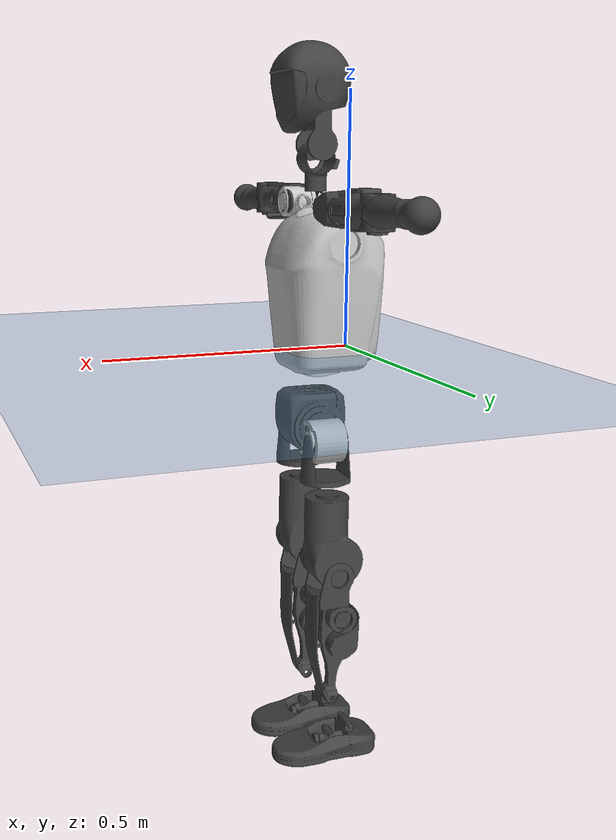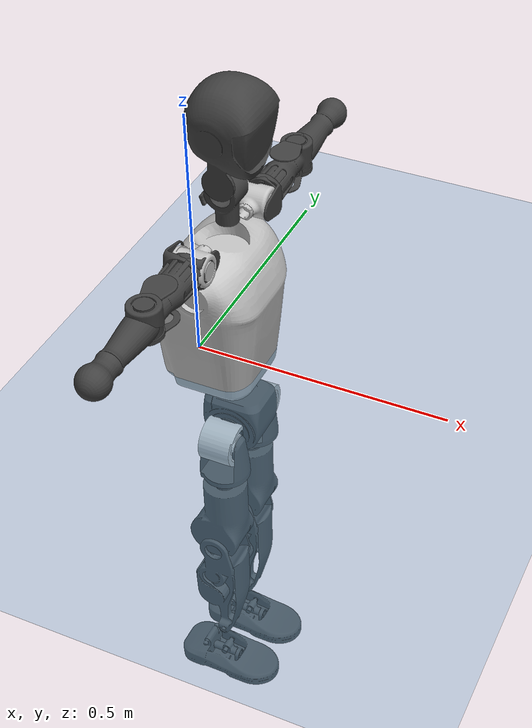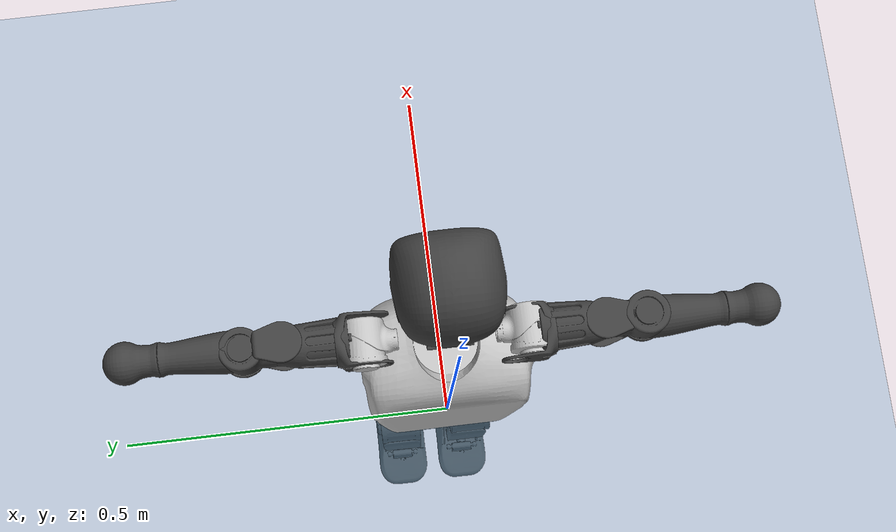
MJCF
<mujoco model="T1">
  <compiler angle="radian" assetdir="assets" balanceinertia="true" inertiafromgeom="false"/>

  <option timestep="0.005" density="1.2" viscosity="2e-05"/>

  <size nkey="1"/>

  <visual>
    <quality shadowsize="8192"/>
    <map shadowclip="0.5"/>
  </visual>

  <default>
    <default class="/">
      <joint armature="0.01" damping="0.01" frictionloss="0.1"/>
      <geom contype="0" conaffinity="0" group="1" solref="-1000 -80"/>
      <site size="0.01 0.005 0.005" group="5"/>
      <general forcelimited="true" biastype="affine" gainprm="25" biasprm="0 -25 -0.6"/>
      <default class="t1">
        <geom rgba="0.25 0.25 0.25 1"/>
        <default class="visual">
          <geom type="mesh" group="2"/>
        </default>
        <default class="collision">
          <geom group="3"/>
        </default>
        <default class="foot">
          <geom size="0.1115 0.05 0.015" type="box" condim="6" group="4" priority="1" solimp="0.015 1 0.015"/>
        </default>
        <default class="reward_collision_sphere">
          <geom group="5" rgba="1 0 0 1"/>
        </default>
      </default>
    </default>
  </default>

  <asset>
    <texture type="skybox" colorspace="auto" name="//unnamed_texture_0" builtin="gradient" rgb1="0.95 0.95 0.95" rgb2="0.95 0.95 0.95" width="100" height="600"/>
    <texture type="2d" colorspace="auto" name="texplane" builtin="checker" rgb1="0.345 0.575 0.748" rgb2="0.345 0.575 0.748" markrgb="1 1 1" width="512" height="512"/>
    <material name="MatPlane" class="/" texture="texplane" texuniform="true" texrepeat="2 2" specular="0.9"/>
    <mesh name="Trunk" class="/" file="Trunk.stl"/>
    <mesh name="H1" class="/" file="H1.stl"/>
    <mesh name="H2" class="/" file="H2.stl"/>
    <mesh name="AL1" class="/" file="AL1.stl"/>
    <mesh name="AL2" class="/" file="AL2.stl"/>
    <mesh name="AL3" class="/" file="AL3.stl"/>
    <mesh name="left_hand_link" class="/" file="left_hand_link.stl"/>
    <mesh name="AR1" class="/" file="AR1.stl"/>
    <mesh name="AR2" class="/" file="AR2.stl"/>
    <mesh name="AR3" class="/" file="AR3.stl"/>
    <mesh name="right_hand_link" class="/" file="right_hand_link.stl"/>
    <mesh name="Waist" class="/" file="Waist.stl"/>
    <mesh name="Hip_Pitch_Left" class="/" file="Hip_Pitch_Left.stl"/>
    <mesh name="Hip_Roll_Left" class="/" file="Hip_Roll_Left.stl"/>
    <mesh name="Hip_Yaw_Left" class="/" file="Hip_Yaw_Left.stl"/>
    <mesh name="Shank_Left" class="/" file="Shank_Left.stl"/>
    <mesh name="Ankle_Cross_Left" class="/" file="Ankle_Cross_Left.stl"/>
    <mesh name="left_foot_link" class="/" file="left_foot_link.stl"/>
    <mesh name="Hip_Pitch_Right" class="/" file="Hip_Pitch_Right.stl"/>
    <mesh name="Hip_Roll_Right" class="/" file="Hip_Roll_Right.stl"/>
    <mesh name="Hip_Yaw_Right" class="/" file="Hip_Yaw_Right.stl"/>
    <mesh name="Shank_Right" class="/" file="Shank_Right.stl"/>
    <mesh name="Ankle_Cross_Right" class="/" file="Ankle_Cross_Right.stl"/>
    <mesh name="right_foot_link" class="/" file="right_foot_link.stl"/>
  </asset>

  <worldbody>
    <geom name="floor" class="/" size="100 100 0.125" type="plane" group="0" material="MatPlane"/>
    <light name="toplight_shadow" class="/" pos="0 0 5" dir="0.0990148 0.0990148 -0.990148" type="directional" ambient="0.04 0.04 0.04" diffuse="0.55 0.55 0.55" specular="0.12 0.12 0.12"/>
    <light name="toplight_fill" class="/" pos="0 0 5" dir="0.0990148 0.0990148 -0.990148" type="directional" castshadow="false" ambient="0.04 0.04 0.04" diffuse="0.3 0.3 0.3" specular="0.08 0.08 0.08"/>
    <body name="trunk" childclass="t1" pos="0.000201866 0.0020904 -0.00344231" quat="1 -0.000208455 0.000211731 1.35765e-05">
      <inertial pos="0.0586057 0.00176441 0.137248" quat="0.999917 0.00629395 -0.00984502 -0.00549592" mass="12.1284" diaginertia="0.166636 0.00682673 0.190913"/>
      <joint name="//unnamed_joint_0" type="free" armature="0" damping="0" frictionloss="0"/>
      <geom name="//unnamed_geom_1" class="visual" rgba="0.76 0.76 0.76 1" mesh="Trunk"/>
      <geom name="//unnamed_geom_2" class="collision" size="0.0758764 0.101169 0.151753" pos="0.0679567 0 0.154358" type="box"/>
      <geom name="//unnamed_geom_3" class="reward_collision_sphere" size="0.116344" pos="0.0679567 0 0.128632"/>
      <geom name="//unnamed_geom_4" class="reward_collision_sphere" size="0.0151753" pos="0.0679567 0.0523709 0"/>
      <geom name="//unnamed_geom_5" class="reward_collision_sphere" size="0.0151753" pos="0.0679567 -0.0523709 0"/>
      <geom name="//unnamed_geom_6" class="reward_collision_sphere" size="0.0151753" pos="0.0679567 0.0659257 0.231537"/>
      <geom name="//unnamed_geom_7" class="reward_collision_sphere" size="0.0151753" pos="0.0679567 -0.0659257 0.231537"/>
      <site name="imu" pos="0.000495523 -0.0248199 -0.00143942" size="0.0101169"/>
      <camera name="track" pos="0 -1.23226 0" quat="0.707107 0.707107 0 0" mode="trackcom"/>
      <camera name="ego_camera" pos="0.138179 0 0.540253" quat="-0.5 -0.5 0.5 0.5"/>
      <body name="H1" pos="0.0709254 0.000920523 0.311467" quat="0.999997 0.00195014 0.000854446 0.000997875">
        <inertial pos="-0.0018954 -0.00406812 0.0740214" quat="0.76149 -0.00961593 0.00266482 0.648099" mass="0.482087" diaginertia="0.000447444 1.93905e-05 0.000509707"/>
        <joint name="AAHead_yaw" pos="0 0 0" axis="0.00166004 -0.00458274 0.999988" range="-1.56448 1.43678" armature="0.00928767" damping="0.0187305" frictionloss="0.111153"/>
        <geom name="//unnamed_geom_8" class="visual" mesh="H1"/>
        <body name="H2" pos="-0.000131308 0.00156631 0.0877009" quat="0.999992 -0.00106175 -0.00334388 -0.00165046">
          <inertial pos="0.00840312 -0.00187308 0.123482" quat="0.987475 0.114704 -0.0779774 -0.0752018" mass="0.652331" diaginertia="0.00375875 0.000163442 0.00632611"/>
          <joint name="Head_pitch" pos="0 0 0" axis="-0.0146831 -0.999867 0.00716516" stiffness="0.00810137" range="-1.18411 0.366217" armature="0.0107906" damping="0.00714701" frictionloss="0.107203"/>
          <geom name="//unnamed_geom_9" class="visual" mesh="H2"/>
          <geom name="//unnamed_geom_10" class="collision" size="0.0809348" pos="0.0113261 0 0.141495"/>
          <geom name="//unnamed_geom_11" class="reward_collision_sphere" size="0.0910517" pos="0.0226522 0 0.128632"/>
        </body>
      </body>
      <body name="AL1" pos="0.0685518 0.0666686 0.284072" quat="1 -0.000341717 -0.000426066 0.000376463">
        <inertial pos="0.00021985 0.0290195 0.000349499" quat="0.513639 0.491459 -0.483453 0.5108" mass="0.585054" diaginertia="0.00266159 0.000120196 0.00104803"/>
        <joint name="Left_Shoulder_Pitch" pos="0 0 0" axis="0.00501579 0.999986 0.00195984" stiffness="0.00448089" range="-3.43121 1.21461" armature="0.0115557" damping="0.012104" frictionloss="0.102267"/>
        <geom name="//unnamed_geom_12" class="visual" rgba="0.76 0.76 0.76 1" mesh="AL1"/>
        <body name="AL2" pos="0.00307572 0.0294952 -0.000544135" quat="0.999996 0.00174539 -0.000178938 -0.00213641">
          <inertial pos="-0.00276402 0.0223233 0.000239833" quat="0.483954 0.510947 -0.489855 0.514552" mass="0.173577" diaginertia="0.000788085 3.18287e-05 0.000681092"/>
          <joint name="Left_Shoulder_Roll" pos="0 0 0" axis="-0.999904 -0.0136951 -0.00204442" range="-1.56343 1.70096" armature="0.00907544" damping="0" frictionloss="0.0898249"/>
          <geom name="//unnamed_geom_13" class="visual" mesh="AL2"/>
          <body name="AL3" pos="0.00255203 0.0371705 -0.000332851" quat="0.999997 0.00247436 0.00046866 -0.00020797">
            <inertial pos="-0.00614801 0.0546263 -0.000791632" quat="0.680697 0.73247 0.00993815 -0.0063864" mass="0.962506" diaginertia="0.0213888 0.000929668 0.00203119"/>
            <joint name="Left_Elbow_Pitch" pos="0 0 0" axis="0.00126955 -0.999965 -0.00826764" range="-2.31046 2.13073" armature="0.00804611" damping="0.01059" frictionloss="0.0660035"/>
            <geom name="//unnamed_geom_14" class="visual" mesh="AL3"/>
            <geom name="//unnamed_geom_15" class="collision" size="0.0303506 0.0758764" pos="0 0.0308064 0" quat="0.707105 0.707108 0 0" type="cylinder"/>
            <geom name="//unnamed_geom_16" class="reward_collision_sphere" size="0.0364207"/>
            <body name="left_hand_link" pos="0.00200429 0.0908913 0.00270628" quat="0.999994 -0.00041829 0.00306024 -0.00128949">
              <inertial pos="-0.00222232 0.0645336 0.0023357" quat="0.712999 0.701148 0.0042744 0.00229706" mass="0.3402" diaginertia="0.0139271 0.000685223 0.000797939"/>
              <joint name="Left_Elbow_Yaw" pos="0 0 0" axis="0.0117281 -0.0193291 0.999744" range="-2.42693 -0.136713" armature="0.0120092" damping="0.0290774" frictionloss="0.0968347"/>
              <geom name="//unnamed_geom_17" class="visual" mesh="left_hand_link"/>
              <geom name="//unnamed_geom_18" class="collision" size="0.0303506 0.0885225" pos="0 0.0800967 0" quat="0.707105 0.707108 0 0" type="cylinder"/>
              <geom name="//unnamed_geom_19" class="reward_collision_sphere" size="0.0505843"/>
              <geom name="//unnamed_geom_20" class="reward_collision_sphere" size="0.035409" pos="0 0.0677741 0"/>
              <geom name="//unnamed_geom_21" class="reward_collision_sphere" size="0.035409" pos="0 0.132468 0"/>
            </body>
          </body>
        </body>
      </body>
      <body name="AR1" pos="0.0627058 -0.0690127 0.287327" quat="1 0.000236077 0.000289706 0.000186941">
        <inertial pos="-0.0015091 -0.0230397 0.00143316" quat="0.508691 0.497503 -0.502829 0.490803" mass="0.541424" diaginertia="0.0025099 0.000115979 0.00101399"/>
        <joint name="Right_Shoulder_Pitch" pos="0 0 0" axis="0.0111916 -0.999345 -0.0344013" stiffness="0.00155058" range="-1.22561 3.1904" armature="0.00914494" damping="0.00566164" frictionloss="0.133347"/>
        <geom name="//unnamed_geom_22" class="visual" rgba="0.76 0.76 0.76 1" mesh="AR1"/>
        <body name="AR2" pos="-0.00749591 -0.0231132 0.00147651" quat="1 -3.92287e-05 3.35054e-05 -1.68017e-05">
          <inertial pos="0.00109928 -0.0237697 0.00334808" quat="0.510471 0.484729 -0.513212 0.490989" mass="0.141803" diaginertia="0.000692442 2.86881e-05 0.000562174"/>
          <joint name="Right_Shoulder_Roll" pos="0 0 0" axis="-0.999768 0.000701684 0.021545" stiffness="0.018921" range="-1.72937 1.50724" armature="0.0090143" damping="0.0247196" frictionloss="0.0804142"/>
          <geom name="//unnamed_geom_23" class="visual" mesh="AR2"/>
          <body name="AR3" pos="0.0046798 -0.0353999 0.000300988" quat="1 0.000243675 7.02813e-05 -0.000457043">
            <inertial pos="-5.4927e-05 -0.0562695 0.00249003" quat="0.707827 0.706386 0.000153234 0.000439877" mass="0.904735" diaginertia="0.021567 0.00102768 0.00196674"/>
            <joint name="Right_Elbow_Pitch" pos="0 0 0" axis="0.00229027 0.999964 -0.00816948" stiffness="0.0400386" range="-2.19671 2.36128" armature="0.00913882" damping="0" frictionloss="0.103401"/>
            <geom name="//unnamed_geom_24" class="visual" mesh="AR3"/>
            <geom name="//unnamed_geom_25" class="collision" size="0.0303506 0.0758764" pos="0 -0.0308064 0" quat="0.707105 0.707108 0 0" type="cylinder"/>
            <geom name="//unnamed_geom_26" class="reward_collision_sphere" size="0.0364207"/>
            <body name="right_hand_link" pos="-0.00136707 -0.0899318 -0.00554421" quat="1 3.31433e-06 -8.00962e-06 -9.28679e-06">
              <inertial pos="-0.00241771 -0.0669581 0.00740952" quat="0.711253 0.702888 0.00826174 2.17851e-05" mass="0.378006" diaginertia="0.016043 0.000719968 0.000785501"/>
              <joint name="Right_Elbow_Yaw" pos="0 0 0" axis="0.010481 -0.00854007 0.999909" range="0.0102039 2.34339" armature="0.00909699" damping="0.00528528" frictionloss="0.0902067"/>
              <geom name="//unnamed_geom_27" class="visual" mesh="right_hand_link"/>
              <geom name="//unnamed_geom_28" class="collision" size="0.0303506 0.0885225" pos="0 -0.0800967 0" quat="0.707105 0.707108 0 0" type="cylinder"/>
              <geom name="//unnamed_geom_29" class="reward_collision_sphere" size="0.0505843"/>
              <geom name="//unnamed_geom_30" class="reward_collision_sphere" size="0.035409" pos="0 -0.0677741 0"/>
              <geom name="//unnamed_geom_31" class="reward_collision_sphere" size="0.035409" pos="0 -0.132468 0"/>
            </body>
          </body>
        </body>
      </body>
      <body name="Waist" pos="0.0790727 0.00451026 -0.146553" quat="0.999999 0.000408764 -0.00163302 -0.000388979">
        <inertial pos="0.0057475 0.00354784 0.0118808" quat="0.983729 0.000423915 -0.179656 0.00129563" mass="2.80858" diaginertia="0.0106677 0.000517001 0.0181834"/>
        <joint name="Waist" pos="0 0 0" axis="0.00979618 0.000949594 0.999952" range="-1.58973 1.55137" armature="0.0107633" damping="0.00566856" frictionloss="0.132337"/>
        <geom name="//unnamed_geom_32" class="visual" mesh="Waist"/>
        <body name="Hip_Pitch_Left" pos="0.000694938 0.0710368 -0.00393737" quat="0.999998 -0.000892603 9.83481e-05 -0.00180356">
          <inertial pos="0.00290541 -0.00650216 -0.0226041" quat="0.974424 0.224275 0.0137353 0.00302879" mass="1.06178" diaginertia="0.00330348 0.000119092 0.00446334"/>
          <joint name="Left_Hip_Pitch" pos="0 0 0" axis="0.00945275 0.999936 -0.00616633" stiffness="0.0293228" range="-1.85165 1.59403" armature="0.00939333" damping="0.01945" frictionloss="0.103464"/>
          <geom name="//unnamed_geom_33" class="visual" rgba="0.76 0.76 0.76 1" mesh="Hip_Pitch_Left"/>
          <body name="Hip_Roll_Left" pos="-0.00523795 -0.00275994 -0.0273106" quat="0.999993 -0.00313406 -0.00164498 -0.00151286">
            <inertial pos="0.00697617 0.00402208 -0.0676094" quat="0.731195 -0.000367239 -0.014822 0.682007" mass="0.418667" diaginertia="0.00351983 0.000142048 0.00183475"/>
            <joint name="Left_Hip_Roll" pos="0 0 0" axis="-0.999268 -0.0182248 -0.0336298" range="-1.50487 0.0877223" armature="0.00763028" damping="0.0184068" frictionloss="0.090537"/>
            <geom name="//unnamed_geom_34" class="visual" mesh="Hip_Roll_Left"/>
            <geom name="//unnamed_geom_35" class="reward_collision_sphere" size="0.0556427"/>
            <body name="Hip_Yaw_Left" pos="-0.00812484 -0.0023832 -0.109999" quat="0.999995 -0.00117446 0.000483179 -0.00275587">
              <inertial pos="-0.00573851 -0.00311699 -0.113953" quat="0.697811 -0.0437666 -0.0270189 0.714433" mass="2.14369" diaginertia="0.0484662 0.00220073 0.0085398"/>
              <joint name="Left_Hip_Yaw" pos="0 0 0" axis="-0.0031793 -0.00106381 -0.999994" range="-0.973963 1.13169" armature="0.0111793" damping="0" frictionloss="0.0987166"/>
              <geom name="//unnamed_geom_36" class="visual" mesh="Hip_Yaw_Left"/>
              <geom name="//unnamed_geom_37" class="collision" size="0.0505843 0.0809348" type="cylinder"/>
              <body name="Shank_Left" pos="-0.0154206 -0.000674726 -0.165723" quat="0.999999 0.000292807 0.00103613 6.24661e-05">
                <inertial pos="-0.010982 0.00505012 -0.158116" quat="0.996841 0.00440178 -0.0278486 0.0742492" mass="1.84099" diaginertia="0.0652108 0.00322808 0.00686077"/>
                <joint name="Left_Knee_Pitch" pos="0 0 0" axis="0.0153931 0.99986 -0.0066309" range="-0.0257464 2.34013" armature="0.0105798" damping="0.00272391" frictionloss="0.112535"/>
                <geom name="//unnamed_geom_38" class="visual" mesh="Shank_Left"/>
                <geom name="//unnamed_geom_39" class="collision" size="0.0505843 0.0758764" pos="0 0 -0.154358" type="cylinder"/>
                <geom name="//unnamed_geom_40" class="reward_collision_sphere" size="0.0657596"/>
                <body name="Ankle_Cross_Left" pos="0.00130303 0.00241035 -0.366523" quat="1 0.000188038 -0.00030193 -0.000376441">
                  <inertial pos="-0.00719285 0.00111543 -0.00931561" quat="0.44178 0.547893 0.55369 0.445052" mass="0.0697165" diaginertia="5.32157e-05 2.25151e-06 3.9426e-05"/>
                  <joint name="Left_Ankle_Pitch" pos="0 0 0" axis="-0.000483484 0.999999 0.00149652" range="-0.894993 0.369486" armature="0.010922" damping="0.00464688" frictionloss="0.115801"/>
                  <geom name="//unnamed_geom_41" class="visual" mesh="Ankle_Cross_Left"/>
                  <body name="left_foot_link" pos="0.000712359 -0.000962863 -0.0133164" quat="1 0.00050552 0.000107183 -0.00061858">
                    <inertial pos="0.000421654 -0.00390424 -0.0126696" quat="0.00843613 0.623498 -0.00469499 0.781765" mass="0.773906" diaginertia="0.00461348 0.000212335 0.00779437"/>
                    <joint name="Left_Ankle_Roll" pos="0 0 0" axis="-0.999964 0.00500599 0.00680321" range="-0.461173 0.316754" armature="0.00680128" damping="0.00993042" frictionloss="0.105081"/>
                    <geom name="//unnamed_geom_42" class="visual" mesh="left_foot_link"/>
                    <geom name="left_foot" class="foot" size="0.0983533 0.0573798 0.0144862" pos="0.0113261 0 -0.0192947"/>
                    <geom name="//unnamed_geom_44" class="reward_collision_sphere" size="0.0526076" pos="0.0113261 0 -0.0192947"/>
                    <geom name="//unnamed_geom_45" class="reward_collision_sphere" size="0.0303506" pos="0.107598 -0.014171 -0.0192947"/>
                    <geom name="//unnamed_geom_46" class="reward_collision_sphere" size="0.0303506" pos="-0.0792828 -0.014171 -0.0192947"/>
                    <site name="left_foot" class="foot" pos="0.0113261 0 -0.0192947" size="0.0101169"/>
                  </body>
                </body>
              </body>
            </body>
          </body>
        </body>
        <body name="Hip_Pitch_Right" pos="-0.00451801 -0.0654198 0.00362418" quat="0.999999 0.00155012 0.000230642 0.000270181">
          <inertial pos="0.0056816 0.00631463 -0.0233617" quat="0.972077 -0.234228 0.0138433 -0.00339568" mass="1.06008" diaginertia="0.00336627 0.000131527 0.00440973"/>
          <joint name="Right_Hip_Pitch" pos="0 0 0" axis="-0.00159557 -0.999971 -0.00738492" stiffness="0.00217309" range="-1.53137 1.82586" armature="0.00614867" damping="0.00506049" frictionloss="0.104212"/>
          <geom name="//unnamed_geom_47" class="visual" rgba="0.76 0.76 0.76 1" mesh="Hip_Pitch_Right"/>
          <body name="Hip_Roll_Right" pos="0.000891081 0.0013841 -0.0287053" quat="0.999999 0.000278926 -0.000122739 -0.00134419">
            <inertial pos="0.00234202 0.00621938 -0.0658593" quat="0.721922 -0.0144882 -0.0196056 0.691544" mass="0.450023" diaginertia="0.00367288 0.000150843 0.00198993"/>
            <joint name="Right_Hip_Roll" pos="0 0 0" axis="-0.999843 0.012131 0.012946" range="-0.243151 1.58121" armature="0.00976957" damping="0.0166035" frictionloss="0.119315"/>
            <geom name="//unnamed_geom_48" class="visual" mesh="Hip_Roll_Right"/>
            <geom name="//unnamed_geom_49" class="reward_collision_sphere" size="0.0556427"/>
            <body name="Hip_Yaw_Right" pos="-0.00408185 -0.00130807 -0.109348" quat="0.999999 -0.000653324 -0.000228979 -0.00145166">
              <inertial pos="-0.00817518 0.00754583 -0.115019" quat="0.713959 -0.0343907 -0.0322802 0.698597" mass="2.42673" diaginertia="0.0528842 0.00248201 0.00984913"/>
              <joint name="Right_Hip_Yaw" pos="0 0 0" axis="-0.00255221 -0.00651899 -0.999975" range="-0.981367 0.916282" armature="0.00920465" damping="0.010973" frictionloss="0.102982"/>
              <geom name="//unnamed_geom_50" class="visual" mesh="Hip_Yaw_Right"/>
              <geom name="//unnamed_geom_51" class="collision" size="0.0505843 0.0809348" type="cylinder"/>
              <body name="Shank_Right" pos="-0.0135013 -0.000981606 -0.172098" quat="1 -0.000121039 0.000765872 -0.00040749">
                <inertial pos="-0.00759807 0.000508003 -0.157741" quat="0.999053 0.00572107 -0.0209067 -0.0377195" mass="1.91724" diaginertia="0.075869 0.00323248 0.00725025"/>
                <joint name="Right_Knee_Pitch" pos="0 0 0" axis="0.0268244 -0.999631 0.00430435" stiffness="0.0240074" range="-2.35518 -0.00118772" armature="0.0102119" damping="0.0139285" frictionloss="0.10758"/>
                <geom name="//unnamed_geom_52" class="visual" mesh="Shank_Right"/>
                <geom name="//unnamed_geom_53" class="collision" size="0.0505843 0.0758764" pos="0 0 -0.154358" type="cylinder"/>
                <geom name="//unnamed_geom_54" class="reward_collision_sphere" size="0.0657596"/>
                <body name="Ankle_Cross_Right" pos="-0.0011438 -0.00223024 -0.361775" quat="0.999998 -0.000944029 -0.000680358 -0.00170753">
                  <inertial pos="-0.00597682 0.000880703 -0.00419425" quat="0.419355 0.562007 0.544195 0.460589" mass="0.0794173" diaginertia="6.29191e-05 2.3119e-06 4.59954e-05"/>
                  <joint name="Right_Ankle_Pitch" pos="0 0 0" axis="-0.00104588 -0.999771 0.0213963" stiffness="0.0207124" range="-0.405673 0.880289" armature="0.00968512" damping="0.021602" frictionloss="0.121028"/>
                  <geom name="//unnamed_geom_55" class="visual" mesh="Ankle_Cross_Right"/>
                  <body name="right_foot_link" pos="-0.00175315 0.00122264 -0.0174871" quat="1 0.000177161 1.51204e-05 -4.66635e-06">
                    <inertial pos="0.00748385 0.00287434 -0.0125313" quat="-0.00100601 0.630782 0.00581494 0.775938" mass="0.703986" diaginertia="0.00491848 0.000207913 0.00780066"/>
                    <joint name="Right_Ankle_Roll" pos="0 0 0" axis="-0.999999 -0.000116773 -0.00154338" range="-0.478509 0.48088" armature="0.00980133" damping="0" frictionloss="0.107862"/>
                    <geom name="//unnamed_geom_56" class="visual" mesh="right_foot_link"/>
                    <geom name="right_foot" class="foot" size="0.0977217 0.047326 0.0148892" pos="0.0113261 0 -0.0192947"/>
                    <geom name="//unnamed_geom_58" class="reward_collision_sphere" size="0.0404674"/>
                    <geom name="//unnamed_geom_59" class="reward_collision_sphere" size="0.0303506" pos="0.0113261 0 -0.0192947"/>
                    <geom name="//unnamed_geom_60" class="reward_collision_sphere" size="0.0303506" pos="0.107598 0.014171 -0.0192947"/>
                    <geom name="//unnamed_geom_61" class="reward_collision_sphere" size="0.0303506" pos="-0.0792828 0.014171 -0.0192947"/>
                    <site name="right_foot" class="foot" pos="0.0113261 0 -0.0192947" size="0.0101169"/>
                  </body>
                </body>
              </body>
            </body>
          </body>
        </body>
      </body>
    </body>
  </worldbody>

  <contact>
    <pair class="/" geom1="floor" geom2="left_foot" name="//unnamed_contact_0"/>
    <pair class="/" geom1="floor" geom2="right_foot" name="//unnamed_contact_1"/>
  </contact>

  <actuator>
    <general name="AAHead_yaw" class="/" joint="AAHead_yaw" forcerange="-6.39746 6.39746" gainprm="26.4364" biasprm="0 -26.4364 -0.629351"/>
    <general name="Head_pitch" class="/" joint="Head_pitch" forcerange="-6.27416 6.27416" gainprm="26.4364" biasprm="0 -26.4364 -0.629351"/>
    <general name="Left_Shoulder_Pitch" class="/" joint="Left_Shoulder_Pitch" forcerange="-17.8758 17.8758" gainprm="26.4364" biasprm="0 -26.4364 -0.629351"/>
    <general name="Left_Shoulder_Roll" class="/" joint="Left_Shoulder_Roll" forcerange="-19.3987 19.3987" gainprm="26.4364" biasprm="0 -26.4364 -0.629351"/>
    <general name="Left_Elbow_Pitch" class="/" joint="Left_Elbow_Pitch" forcerange="-14.3212 14.3212" gainprm="26.4364" biasprm="0 -26.4364 -0.629351"/>
    <general name="Left_Elbow_Yaw" class="/" joint="Left_Elbow_Yaw" forcerange="-19.792 19.792" gainprm="26.4364" biasprm="0 -26.4364 -0.629351"/>
    <general name="Right_Shoulder_Pitch" class="/" joint="Right_Shoulder_Pitch" forcerange="-22.8264 22.8264" gainprm="26.4364" biasprm="0 -26.4364 -0.629351"/>
    <general name="Right_Shoulder_Roll" class="/" joint="Right_Shoulder_Roll" forcerange="-17.3875 17.3875" gainprm="26.4364" biasprm="0 -26.4364 -0.629351"/>
    <general name="Right_Elbow_Pitch" class="/" joint="Right_Elbow_Pitch" forcerange="-14.0965 14.0965" gainprm="26.4364" biasprm="0 -26.4364 -0.629351"/>
    <general name="Right_Elbow_Yaw" class="/" joint="Right_Elbow_Yaw" forcerange="-18.3923 18.3923" gainprm="26.4364" biasprm="0 -26.4364 -0.629351"/>
    <general name="Waist" class="/" joint="Waist" forcerange="-28.6824 28.6824" gainprm="26.4364" biasprm="0 -26.4364 -0.629351"/>
    <general name="Left_Hip_Pitch" class="/" joint="Left_Hip_Pitch" forcerange="-44.2543 44.2543" gainprm="26.4364" biasprm="0 -26.4364 -0.629351"/>
    <general name="Left_Hip_Roll" class="/" joint="Left_Hip_Roll" forcerange="-24.3362 24.3362" gainprm="26.4364" biasprm="0 -26.4364 -0.629351"/>
    <general name="Left_Hip_Yaw" class="/" joint="Left_Hip_Yaw" forcerange="-38.7151 38.7151" gainprm="26.4364" biasprm="0 -26.4364 -0.629351"/>
    <general name="Left_Knee_Pitch" class="/" joint="Left_Knee_Pitch" forcerange="-52.4728 52.4728" gainprm="26.4364" biasprm="0 -26.4364 -0.629351"/>
    <general name="Left_Ankle_Pitch" class="/" joint="Left_Ankle_Pitch" forcerange="-26.5673 26.5673" gainprm="26.4364" biasprm="0 -26.4364 -0.629351"/>
    <general name="Left_Ankle_Roll" class="/" joint="Left_Ankle_Roll" forcerange="-14.0615 14.0615" gainprm="26.4364" biasprm="0 -26.4364 -0.629351"/>
    <general name="Right_Hip_Pitch" class="/" joint="Right_Hip_Pitch" forcerange="-44.2531 44.2531" gainprm="26.4364" biasprm="0 -26.4364 -0.629351"/>
    <general name="Right_Hip_Roll" class="/" joint="Right_Hip_Roll" forcerange="-31.8416 31.8416" gainprm="26.4364" biasprm="0 -26.4364 -0.629351"/>
    <general name="Right_Hip_Yaw" class="/" joint="Right_Hip_Yaw" forcerange="-31.8081 31.8081" gainprm="26.4364" biasprm="0 -26.4364 -0.629351"/>
    <general name="Right_Knee_Pitch" class="/" joint="Right_Knee_Pitch" forcerange="-50.2976 50.2976" gainprm="26.4364" biasprm="0 -26.4364 -0.629351"/>
    <general name="Right_Ankle_Pitch" class="/" joint="Right_Ankle_Pitch" forcerange="-18.9773 18.9773" gainprm="26.4364" biasprm="0 -26.4364 -0.629351"/>
    <general name="Right_Ankle_Roll" class="/" joint="Right_Ankle_Roll" forcerange="-18.6471 18.6471" gainprm="26.4364" biasprm="0 -26.4364 -0.629351"/>
  </actuator>

  <sensor>
    <gyro site="imu" name="imu_angular_velocity"/>
    <velocimeter site="imu" name="imu_linear_velocity"/>
    <framelinvel objtype="site" objname="left_foot" name="left_foot_global_linear_velocity"/>
    <framelinvel objtype="site" objname="right_foot" name="right_foot_global_linear_velocity"/>
  </sensor>

  <keyframe>
    <key name="home" qpos="0 0 0.6385 1 0 0 0 0 0 0 1.4 0 -0.4 0 -1.4 0 0.4 0 -0.4 0 0 0.8 -0.4 0 0.4 0 0 -0.8 0.4 0"/>
  </keyframe>
</mujoco>
